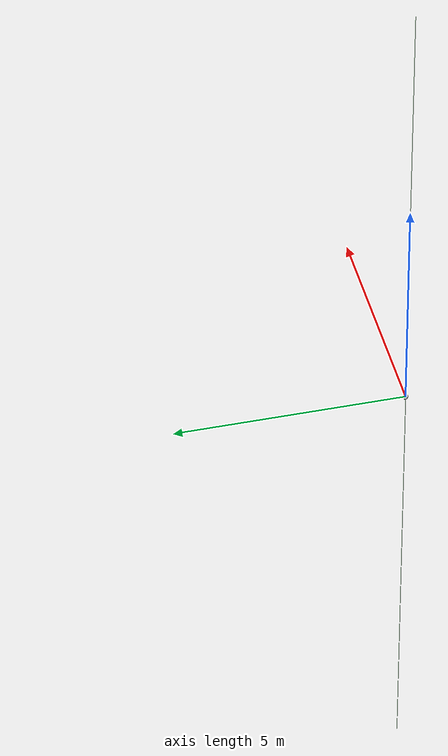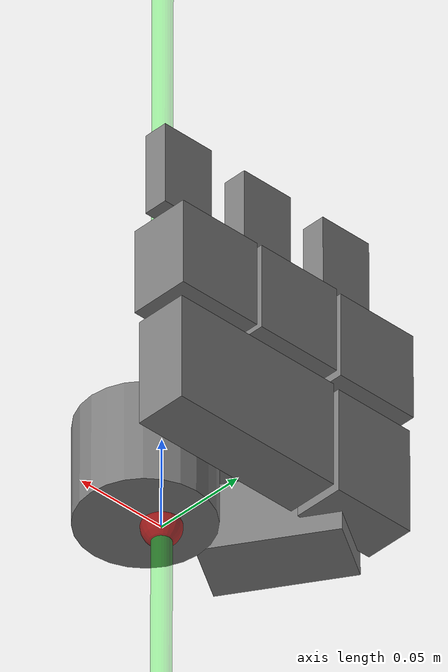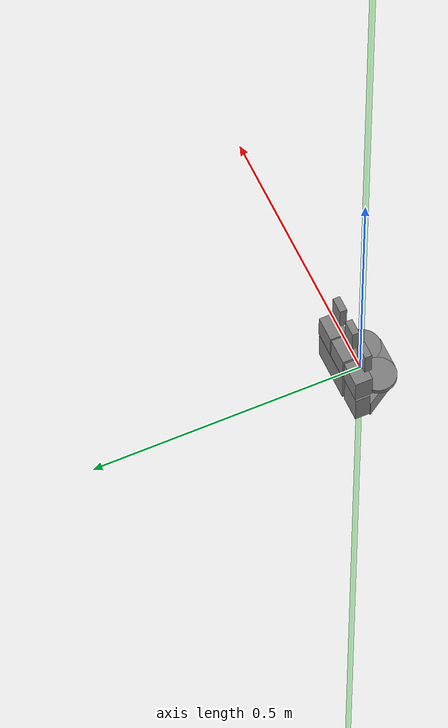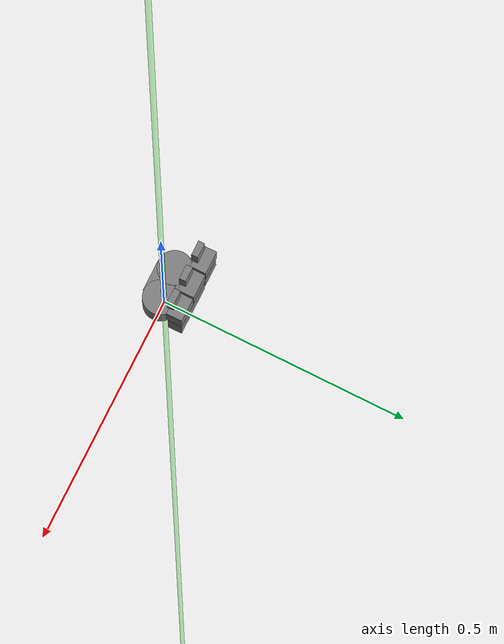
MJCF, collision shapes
<mujoco model="olga_hand">
  <compiler angle="radian" />

  <asset>
    <material name="purple" rgba="0.97647 0.63922 1 1" />
    <material name="blue" rgba="0.55294 0.57255 0.92549 1" />
    <material name="aquamarine" rgba="0.03922 0.8 0.76078 1" />
    <mesh name="base_link" content_type="model/stl" file="../meshes/stl/base_link.stl" />
    <mesh name="proximal_finger_first" content_type="model/stl"
      file="../meshes/stl/proximal_finger_first.stl" />
    <mesh name="mideal_finger_first" content_type="model/stl"
      file="../meshes/stl/mideal_finger_first.stl" />
    <mesh name="distal_finger_first" content_type="model/stl"
      file="../meshes/stl/distal_finger_first.stl" />
    <mesh name="proximal_finger_second" content_type="model/stl"
      file="../meshes/stl/proximal_finger_second.stl" />
    <mesh name="mideal_finger_second" content_type="model/stl"
      file="../meshes/stl/mideal_finger_second.stl" />
    <mesh name="distal_finger_second" content_type="model/stl"
      file="../meshes/stl/distal_finger_second.stl" />
    <mesh name="proximal_thumb" content_type="model/stl" file="../meshes/stl/proximal_thumb.stl" />
    <mesh name="mideal_thumb" content_type="model/stl" file="../meshes/stl/mideal_thumb.stl" />
    <mesh name="distal_thumb" content_type="model/stl" file="../meshes/stl/distal_thumb.stl" />
  </asset>

  <default>
    <!-- constraint stiffness -->
    <geom solimp="0.999 0.999 0.001 0.0001 1" solref="0.0001 1" friction=".2" />

    <!-- actuator defaults -->
    <position kp="3.0" kv="0.01" />
    <joint pos="0 0 0" axis="1 0 0" damping="0.03" frictionloss="0.001"
      actuatorfrcrange="-0.98 0.98" />
    <!-- geom class defaults -->
    <default class="visual">
      <geom group="1" type="mesh" contype="0" conaffinity="0" density="0" material="black" />
    </default>
    <default class="medial">
      <joint range="-0.4 1.5" />
      <position ctrlrange="-0.4 1.5" />
    </default>
    <default class="distal">
      <joint range="-0.5 1.9" />
      <position ctrlrange="-0.5 1.9" />
    </default>
    <default class="proximal">
      <joint pos="0 0 0" axis="0 0 -1" range="-3.14 0" />
      <position ctrlrange="-3.14 0" />
    </default>
  </default>

  <!-- actuators -->
  <actuator>
    <!-- mideal -->
    <position name="first_mideal" joint="joint_mideal_finger_first" class="medial" />
    <position name="second_mideal" joint="joint_mideal_finger_second" class="medial" />
    <position name="thumb_mideal" joint="joint_mideal_thumb" class="medial" />

    <!-- distal -->
    <position name="first_distal" joint="joint_distal_finger_first" class="distal" />
    <position name="second_distal" joint="joint_distal_finger_second" class="distal" />
    <position name="thumb_distal" joint="joint_distal_thumb" class="distal" />

    <!-- proximal -->
    <position name="thumb_proximal" joint="joint_proximal_thumb" class="proximal" />

  </actuator>

  <!-- world body -->

  <worldbody>
    <body name="gripper_base">

      <!-- This site was added for visualization. -->
      <body name="eef" pos="0 0 0" quat="0 0 0 1">
        <site name="grip_site" pos="0 0 0" size="0.01 0.01 0.01" rgba="1 0 0 0.5" type="sphere"
          group="1" />
        <site name="ee_x" pos="0.1 0 0" size="0.005 .1" quat="0.707105  0 0.707108 0 "
          rgba="1 0 0 0" type="cylinder" group="1" />
        <site name="ee_y" pos="0 0.1 0" size="0.005 .1" quat="0.707105 0.707108 0 0" rgba="0 1 0 0"
          type="cylinder" group="1" />
        <site name="ee_z" pos="0 0 0.1" size="0.005 .1" quat="1 0 0 0" rgba="0 0 1 0"
          type="cylinder" group="1" />
        <!-- This site was added for visualization. -->
        <site name="grip_site_cylinder" pos="0 0 0" size="0.005 10" rgba="0 1 0 0.3" type="cylinder"
          group="1" />
      </body>

      <geom name="base_link_palm_collision" size="0.0299 0.034515 0.004145"
        pos="-0.0236 -0.00503 0.05287" type="box" />
      <geom name="base_link_palm_collision.001" size="0.0338 0.02786" pos="0.00598 -0.00451 0.02932"
        type="cylinder" />
      <geom name="base_link_palm_collision.002" size="0.0338 0.004345"
        pos="-0.0562 -0.00536 0.05313"
        type="cylinder" />
      <geom name="base_link_proximal_collision" size="0.04778 0.014035 0.0289"
        pos="-0.00488 0.04437 0.04885" type="box" />
      <geom name="base_link_visual" class="visual" material="purple" mesh="base_link" />
      <geom name="proximal_finger_first_visual" pos="-0.0302 0.04346 0.025" quat="1 0 0 0"
        class="visual" material="blue" mesh="proximal_finger_first" />
      <geom name="proximal_finger_second_visual" pos="0.0196 0.04346 0.025" quat="1 0 0 0"
        class="visual" material="blue" mesh="proximal_finger_second" />
      <body name="mideal_finger_first" pos="-0.02982 0.04486 0.06311">
        <inertial pos="0.00038 -0.00132 0.04275" quat="0.707107 0 0 0.707107" mass="0.08095"
          diaginertia="3e-05 2e-05 1e-05" />
        <joint name="joint_mideal_finger_first" class="medial" />
        <geom name="mideal_finger_first_collision" size="0.02371 0.016085 0.023535"
          pos="0 -0.00125 0.04563" type="box" />
        <geom name="mideal_finger_first_visual" class="visual" material="blue"
          mesh="mideal_finger_first" />
        <body name="distal_finger_first" pos="0 0 0.05861">
          <inertial pos="0.00033 -0.00619 0.03931" quat="0.707107 0 0 0.707107" mass="0.03759"
            diaginertia="2e-05 1e-05 1e-05" />
          <joint name="joint_distal_finger_first" class="distal" />
          <geom name="distal_finger_first_collision" size="0.0147 0.006515 0.02251"
            pos="0 -0.01256 0.04826" type="box" />
          <geom name="distal_finger_first_visual" class="visual" material="aquamarine"
            mesh="distal_finger_first" />
        </body>
      </body>
      <body name="mideal_finger_second" pos="0.01998 0.04486 0.06311">
        <inertial pos="0.00038 -0.00132 0.04275" quat="0.707107 0 0 0.707107" mass="0.08095"
          diaginertia="3e-05 2e-05 1e-05" />
        <joint name="joint_mideal_finger_second" class="medial" />
        <geom name="mideal_finger_second_collision" size="0.02322 0.01608 0.02352"
          pos="8e-05 -0.00124 0.04517" type="box" />
        <geom name="mideal_finger_second_visual" class="visual" material="blue"
          mesh="mideal_finger_second" />
        <body name="distal_finger_second" pos="0 0 0.05861">
          <inertial pos="0.00033 -0.00619 0.03931" quat="0.707107 0 0 0.707107" mass="0.03759"
            diaginertia="2e-05 1e-05 1e-05" />
          <joint name="joint_distal_finger_second" class="distal" />
          <geom name="distal_finger_second_collision" size="0.0147 0.006515 0.02251"
            pos="0.00024 -0.01254 0.04851" type="box" />
          <geom name="distal_finger_second_visual" class="visual" material="aquamarine"
            mesh="distal_finger_second" />
        </body>
      </body>
      <body name="proximal_thumb" pos="-0.05532 -0.00754 0.0075">
        <inertial pos="-0.01565 0.02996 0.02991" quat="0.653281 0.653281 0.270598 0.270598"
          mass="0.1524" diaginertia="5e-05 4e-05 3e-05" />
        <joint name="joint_proximal_thumb" class="proximal" />
        <geom name="proximal_thumb_collision" size="0.01797 0.03452 0.01791"
          pos="-0.01046 0.01517 0.02043" quat="0.959752 0 0 0.28085" type="box" />
        <geom name="proximal_thumb_proximal_collision" size="0.0226 0.013585 0.02884"
          pos="-0.02431 0.05107 0.04123" type="box" />
        <geom name="proximal_thumb_visual" class="visual" material="blue" mesh="proximal_thumb" />
        <body name="mideal_thumb" pos="-0.0245 0.05232 0.05561">
          <inertial pos="0.00038 -0.00132 0.04275" quat="0.707107 0 0 0.707107" mass="0.08095"
            diaginertia="3e-05 2e-05 1e-05" />
          <joint name="joint_mideal_thumb" class="medial" />
          <geom name="mideal_finger_thumb_collision" size="0.02309 0.016085 0.023535"
            pos="0 -0.00184 0.04499" type="box" />
          <geom name="mideal_thumb_visual" class="visual" material="blue" mesh="mideal_thumb" />
          <body name="distal_thumb" pos="0 0 0.05861">
            <inertial pos="0.00033 -0.00619 0.03931" quat="0.707107 0 0 0.707107" mass="0.03759"
              diaginertia="2e-05 1e-05 1e-05" />
            <joint name="joint_distal_thumb" class="distal" />
            <geom name="distal_finger_thumb_collision" size="0.0147 0.006515 0.02251"
              pos="0 -0.01256 0.04826" type="box" />
            <geom name="distal_thumb_visual" class="visual" material="aquamarine"
              mesh="distal_thumb" />
          </body>
        </body>
      </body>
    </body>
  </worldbody>
</mujoco>
